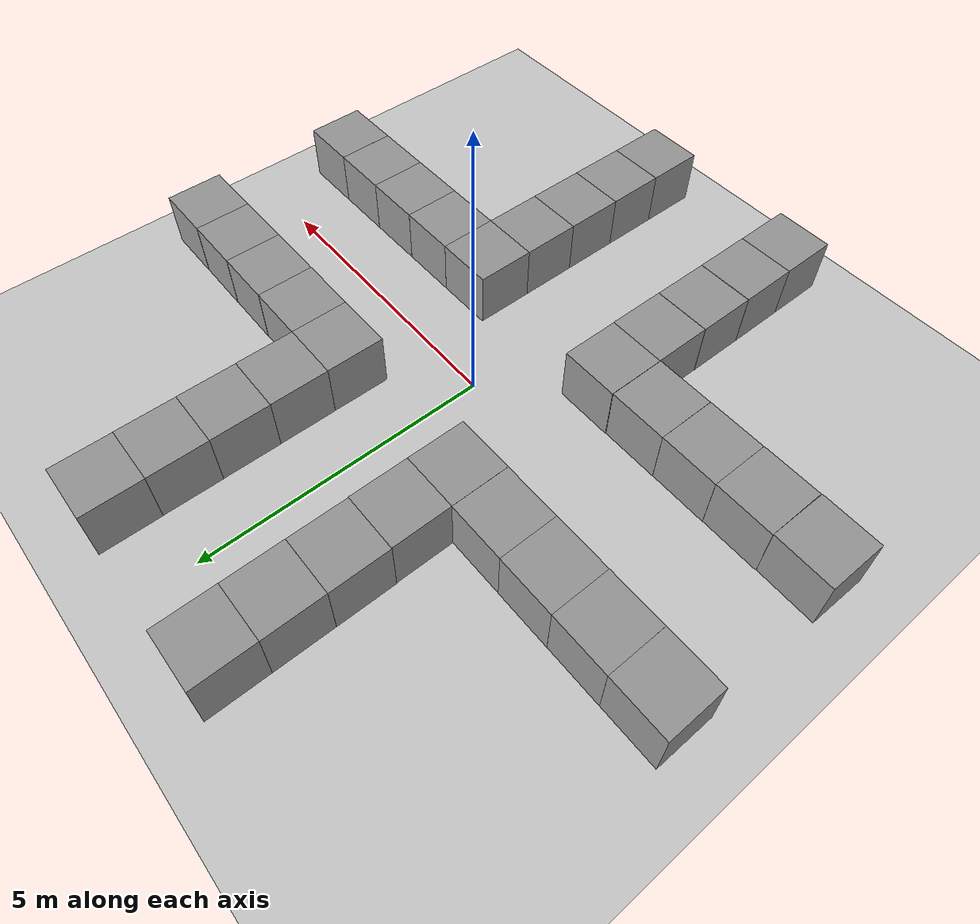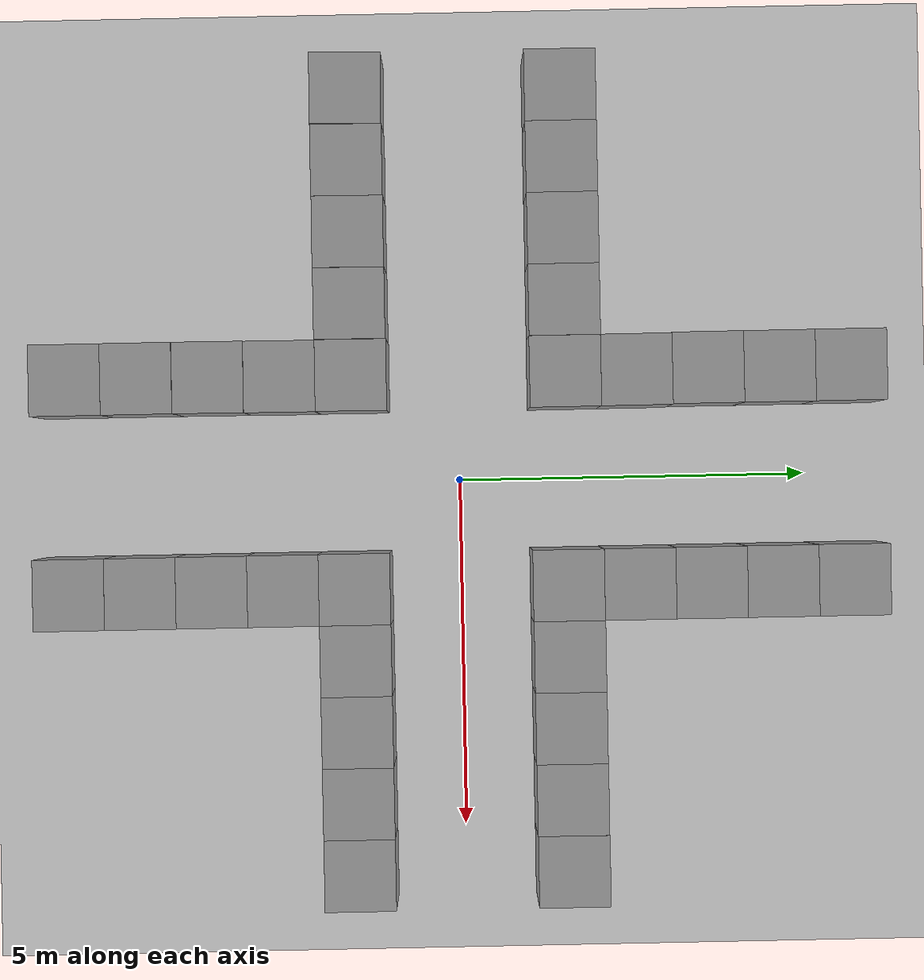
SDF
<sdf version="1.6">
 <world name="default">
  <light name="sun" type="directional">
   <pose>0 0 10 0 -0 0</pose>
   <diffuse>0.8 0.8 0.8 1</diffuse>
   <specular>0.1 0.1 0.1 1</specular>
   <attenuation>
    <range>1000</range>
    <constant>0.9</constant>
    <linear>0.01</linear>
    <quadratic>0.001</quadratic>
   </attenuation>
   <direction>-0.5 0.5 -1</direction>
  </light>
  <model name="ground_plane">
   <pose>1.5 -5.5 0 0 -0 0</pose>
   <static>1</static>
   <link name="link">
    <collision name="collision">
     <geometry><plane><normal>0 0 1</normal><size>100 100</size></plane></geometry>
     <surface><friction><ode><mu>100</mu><mu2>50</mu2></ode></friction></surface>
    </collision>
    <visual name="visual">
     <cast_shadows>0</cast_shadows>
     <geometry><plane><normal>0 0 1</normal><size>100 100</size></plane></geometry>
     <material>
      <script><uri>file://media/materials/scripts/gazebo.material</uri><name>Gazebo/Grey</name></script>
     </material>
    </visual>
   </link>
  </model>
  <gravity>0 0 -9.8</gravity>
  <magnetic_field>6e-06 2.3e-05 -4.2e-05</magnetic_field>
  <atmosphere type="adiabatic"/>
  <physics name="default_physics" default="0" type="ode">
   <max_step_size>0.001</max_step_size>
   <real_time_factor>1</real_time_factor>
   <real_time_update_rate>1000</real_time_update_rate>
  </physics>
  <scene><ambient>0.4 0.4 0.4 1</ambient><background>0.7 0.7 0.7 1</background><shadows>1</shadows></scene>
  <spherical_coordinates>
   <surface_model>EARTH_WGS84</surface_model>
   <latitude_deg>0</latitude_deg>
   <longitude_deg>0</longitude_deg>
   <elevation>0</elevation>
   <heading_deg>0</heading_deg>
  </spherical_coordinates>
  <model name="unit_box_0_0">
   <pose>1.49996 -3.50002 0.499995 0 1e-05 -0.000429</pose>
   <link name="link">
    <inertial>
     <mass>1</mass>
     <inertia>
      <ixx>0.166667</ixx>
      <ixy>0</ixy>
      <ixz>0</ixz>
      <iyy>0.166667</iyy>
      <iyz>0</iyz>
      <izz>0.166667</izz>
     </inertia>
    </inertial>
    <collision name="collision"><geometry><box><size>1 1 1</size></box></geometry></collision>
    <visual name="visual">
     <geometry><box><size>1 1 1</size></box></geometry>
     <material>
      <script><name>Gazebo/Grey</name><uri>file://media/materials/scripts/gazebo.material</uri></script>
     </material>
    </visual>
   </link>
  </model>
  <model name="unit_box_0_1">
   <pose>1.49982 -2.50001 0.499995 0 -1e-05 -0.000421</pose>
   <link name="link">
    <inertial>
     <mass>1</mass>
     <inertia>
      <ixx>0.166667</ixx>
      <ixy>0</ixy>
      <ixz>0</ixz>
      <iyy>0.166667</iyy>
      <iyz>0</iyz>
      <izz>0.166667</izz>
     </inertia>
    </inertial>
    <collision name="collision"><geometry><box><size>1 1 1</size></box></geometry></collision>
    <visual name="visual">
     <geometry><box><size>1 1 1</size></box></geometry>
     <material>
      <script><name>Gazebo/Grey</name><uri>file://media/materials/scripts/gazebo.material</uri></script>
     </material>
    </visual>
   </link>
  </model>
  <model name="unit_box_0_2">
   <pose>1.49988 -1.49998 0.499995 -0 -1e-05 -0.000378</pose>
   <link name="link">
    <inertial>
     <mass>1</mass>
     <inertia>
      <ixx>0.166667</ixx>
      <ixy>0</ixy>
      <ixz>0</ixz>
      <iyy>0.166667</iyy>
      <iyz>0</iyz>
      <izz>0.166667</izz>
     </inertia>
    </inertial>
    <collision name="collision"><geometry><box><size>1 1 1</size></box></geometry></collision>
    <visual name="visual">
     <geometry><box><size>1 1 1</size></box></geometry>
     <material>
      <script><name>Gazebo/Grey</name><uri>file://media/materials/scripts/gazebo.material</uri></script>
     </material>
    </visual>
   </link>
  </model>
  <model name="unit_box_0_0_clone">
   <pose>1.49999 -4.50006 0.499995 0 1e-05 -0.000353</pose>
   <link name="link">
    <inertial>
     <mass>1</mass>
     <inertia>
      <ixx>0.166667</ixx>
      <ixy>0</ixy>
      <ixz>0</ixz>
      <iyy>0.166667</iyy>
      <iyz>0</iyz>
      <izz>0.166667</izz>
     </inertia>
    </inertial>
    <collision name="collision"><geometry><box><size>1 1 1</size></box></geometry></collision>
    <visual name="visual">
     <geometry><box><size>1 1 1</size></box></geometry>
     <material>
      <script><name>Gazebo/Grey</name><uri>file://media/materials/scripts/gazebo.material</uri></script>
     </material>
    </visual>
   </link>
  </model>
  <model name="unit_box_0_3">
   <pose>1.50003 -5.50045 0.499995 0 1e-05 -0.00024</pose>
   <link name="link">
    <inertial>
     <mass>1</mass>
     <inertia>
      <ixx>0.166667</ixx>
      <ixy>0</ixy>
      <ixz>0</ixz>
      <iyy>0.166667</iyy>
      <iyz>0</iyz>
      <izz>0.166667</izz>
     </inertia>
    </inertial>
    <collision name="collision"><geometry><box><size>1 1 1</size></box></geometry></collision>
    <visual name="visual">
     <geometry><box><size>1 1 1</size></box></geometry>
     <material>
      <script><name>Gazebo/Grey</name><uri>file://media/materials/scripts/gazebo.material</uri></script>
     </material>
    </visual>
   </link>
  </model>
  <model name="unit_box_0_4">
   <pose>2.49996 -1.49998 0.499995 0 1e-05 -0.000233</pose>
   <link name="link">
    <inertial>
     <mass>1</mass>
     <inertia>
      <ixx>0.166667</ixx>
      <ixy>0</ixy>
      <ixz>0</ixz>
      <iyy>0.166667</iyy>
      <iyz>0</iyz>
      <izz>0.166667</izz>
     </inertia>
    </inertial>
    <collision name="collision"><geometry><box><size>1 1 1</size></box></geometry></collision>
    <visual name="visual">
     <geometry><box><size>1 1 1</size></box></geometry>
     <material>
      <script><name>Gazebo/Grey</name><uri>file://media/materials/scripts/gazebo.material</uri></script>
     </material>
    </visual>
   </link>
  </model>
  <model name="unit_box_0_5">
   <pose>3.5 -1.49998 0.499995 -1e-05 -0 -0.000178</pose>
   <link name="link">
    <inertial>
     <mass>1</mass>
     <inertia>
      <ixx>0.166667</ixx>
      <ixy>0</ixy>
      <ixz>0</ixz>
      <iyy>0.166667</iyy>
      <iyz>0</iyz>
      <izz>0.166667</izz>
     </inertia>
    </inertial>
    <collision name="collision"><geometry><box><size>1 1 1</size></box></geometry></collision>
    <visual name="visual">
     <geometry><box><size>1 1 1</size></box></geometry>
     <material>
      <script><name>Gazebo/Grey</name><uri>file://media/materials/scripts/gazebo.material</uri></script>
     </material>
    </visual>
   </link>
  </model>
  <model name="unit_box_0_6">
   <pose>4.50002 -1.49994 0.499995 1e-05 0 -0.00016</pose>
   <link name="link">
    <inertial>
     <mass>1</mass>
     <inertia>
      <ixx>0.166667</ixx>
      <ixy>0</ixy>
      <ixz>0</ixz>
      <iyy>0.166667</iyy>
      <iyz>0</iyz>
      <izz>0.166667</izz>
     </inertia>
    </inertial>
    <collision name="collision"><geometry><box><size>1 1 1</size></box></geometry></collision>
    <visual name="visual">
     <geometry><box><size>1 1 1</size></box></geometry>
     <material>
      <script><name>Gazebo/Grey</name><uri>file://media/materials/scripts/gazebo.material</uri></script>
     </material>
    </visual>
   </link>
  </model>
  <model name="unit_box_0_7">
   <pose>5.50006 -1.49999 0.499995 -1e-05 -0 -9.1e-05</pose>
   <link name="link">
    <inertial>
     <mass>1</mass>
     <inertia>
      <ixx>0.166667</ixx>
      <ixy>0</ixy>
      <ixz>0</ixz>
      <iyy>0.166667</iyy>
      <iyz>0</iyz>
      <izz>0.166667</izz>
     </inertia>
    </inertial>
    <collision name="collision"><geometry><box><size>1 1 1</size></box></geometry></collision>
    <visual name="visual">
     <geometry><box><size>1 1 1</size></box></geometry>
     <material>
      <script><name>Gazebo/Grey</name><uri>file://media/materials/scripts/gazebo.material</uri></script>
     </material>
    </visual>
   </link>
  </model>
  <model name="unit_box_0_8">
   <pose>5.50034 1.50004 0.499995 0 1e-05 -0.003414</pose>
   <link name="link">
    <inertial>
     <mass>1</mass>
     <inertia>
      <ixx>0.166667</ixx>
      <ixy>0</ixy>
      <ixz>0</ixz>
      <iyy>0.166667</iyy>
      <iyz>0</iyz>
      <izz>0.166667</izz>
     </inertia>
    </inertial>
    <collision name="collision"><geometry><box><size>1 1 1</size></box></geometry></collision>
    <visual name="visual">
     <geometry><box><size>1 1 1</size></box></geometry>
     <material>
      <script><name>Gazebo/Grey</name><uri>file://media/materials/scripts/gazebo.material</uri></script>
     </material>
    </visual>
   </link>
  </model>
  <model name="unit_box_0_9">
   <pose>4.50019 1.49982 0.499995 0 1e-05 -0.003123</pose>
   <link name="link">
    <inertial>
     <mass>1</mass>
     <inertia>
      <ixx>0.166667</ixx>
      <ixy>0</ixy>
      <ixz>0</ixz>
      <iyy>0.166667</iyy>
      <iyz>0</iyz>
      <izz>0.166667</izz>
     </inertia>
    </inertial>
    <collision name="collision"><geometry><box><size>1 1 1</size></box></geometry></collision>
    <visual name="visual">
     <geometry><box><size>1 1 1</size></box></geometry>
     <material>
      <script><name>Gazebo/Grey</name><uri>file://media/materials/scripts/gazebo.material</uri></script>
     </material>
    </visual>
   </link>
  </model>
  <model name="unit_box_0_10">
   <pose>3.50013 1.49978 0.499995 0 1e-05 -0.003064</pose>
   <link name="link">
    <inertial>
     <mass>1</mass>
     <inertia>
      <ixx>0.166667</ixx>
      <ixy>0</ixy>
      <ixz>0</ixz>
      <iyy>0.166667</iyy>
      <iyz>0</iyz>
      <izz>0.166667</izz>
     </inertia>
    </inertial>
    <collision name="collision"><geometry><box><size>1 1 1</size></box></geometry></collision>
    <visual name="visual">
     <geometry><box><size>1 1 1</size></box></geometry>
     <material>
      <script><name>Gazebo/Grey</name><uri>file://media/materials/scripts/gazebo.material</uri></script>
     </material>
    </visual>
   </link>
  </model>
  <model name="unit_box_0_11">
   <pose>2.50011 1.50034 0.499995 0 1e-05 -0.003073</pose>
   <link name="link">
    <inertial>
     <mass>1</mass>
     <inertia>
      <ixx>0.166667</ixx>
      <ixy>0</ixy>
      <ixz>0</ixz>
      <iyy>0.166667</iyy>
      <iyz>0</iyz>
      <izz>0.166667</izz>
     </inertia>
    </inertial>
    <collision name="collision"><geometry><box><size>1 1 1</size></box></geometry></collision>
    <visual name="visual">
     <geometry><box><size>1 1 1</size></box></geometry>
     <material>
      <script><name>Gazebo/Grey</name><uri>file://media/materials/scripts/gazebo.material</uri></script>
     </material>
    </visual>
   </link>
  </model>
  <model name="unit_box_0_12">
   <pose>1.49998 1.49995 0.499995 0 1e-05 -0.003325</pose>
   <link name="link">
    <inertial>
     <mass>1</mass>
     <inertia>
      <ixx>0.166667</ixx>
      <ixy>0</ixy>
      <ixz>0</ixz>
      <iyy>0.166667</iyy>
      <iyz>0</iyz>
      <izz>0.166667</izz>
     </inertia>
    </inertial>
    <collision name="collision"><geometry><box><size>1 1 1</size></box></geometry></collision>
    <visual name="visual">
     <geometry><box><size>1 1 1</size></box></geometry>
     <material>
      <script><name>Gazebo/Grey</name><uri>file://media/materials/scripts/gazebo.material</uri></script>
     </material>
    </visual>
   </link>
  </model>
  <model name="unit_box_0_13">
   <pose>1.50001 2.50004 0.499995 0 -1e-05 -0.003496</pose>
   <link name="link">
    <inertial>
     <mass>1</mass>
     <inertia>
      <ixx>0.166667</ixx>
      <ixy>0</ixy>
      <ixz>0</ixz>
      <iyy>0.166667</iyy>
      <iyz>0</iyz>
      <izz>0.166667</izz>
     </inertia>
    </inertial>
    <collision name="collision"><geometry><box><size>1 1 1</size></box></geometry></collision>
    <visual name="visual">
     <geometry><box><size>1 1 1</size></box></geometry>
     <material>
      <script><name>Gazebo/Grey</name><uri>file://media/materials/scripts/gazebo.material</uri></script>
     </material>
    </visual>
   </link>
  </model>
  <model name="unit_box_0_14">
   <pose>1.49999 3.50007 0.499995 0 -1e-05 -0.003517</pose>
   <link name="link">
    <inertial>
     <mass>1</mass>
     <inertia>
      <ixx>0.166667</ixx>
      <ixy>0</ixy>
      <ixz>0</ixz>
      <iyy>0.166667</iyy>
      <iyz>0</iyz>
      <izz>0.166667</izz>
     </inertia>
    </inertial>
    <collision name="collision"><geometry><box><size>1 1 1</size></box></geometry></collision>
    <visual name="visual">
     <geometry><box><size>1 1 1</size></box></geometry>
     <material>
      <script><name>Gazebo/Grey</name><uri>file://media/materials/scripts/gazebo.material</uri></script>
     </material>
    </visual>
   </link>
  </model>
  <model name="unit_box_0_15">
   <pose>1.49999 4.50009 0.499995 0 1e-05 -0.003515</pose>
   <link name="link">
    <inertial>
     <mass>1</mass>
     <inertia>
      <ixx>0.166667</ixx>
      <ixy>0</ixy>
      <ixz>0</ixz>
      <iyy>0.166667</iyy>
      <iyz>0</iyz>
      <izz>0.166667</izz>
     </inertia>
    </inertial>
    <collision name="collision"><geometry><box><size>1 1 1</size></box></geometry></collision>
    <visual name="visual">
     <geometry><box><size>1 1 1</size></box></geometry>
     <material>
      <script><name>Gazebo/Grey</name><uri>file://media/materials/scripts/gazebo.material</uri></script>
     </material>
    </visual>
   </link>
  </model>
  <model name="unit_box_0_16">
   <pose>1.49997 5.50009 0.499995 0 -1e-05 -0.003516</pose>
   <link name="link">
    <inertial>
     <mass>1</mass>
     <inertia>
      <ixx>0.166667</ixx>
      <ixy>0</ixy>
      <ixz>0</ixz>
      <iyy>0.166667</iyy>
      <iyz>0</iyz>
      <izz>0.166667</izz>
     </inertia>
    </inertial>
    <collision name="collision"><geometry><box><size>1 1 1</size></box></geometry></collision>
    <visual name="visual">
     <geometry><box><size>1 1 1</size></box></geometry>
     <material>
      <script><name>Gazebo/Grey</name><uri>file://media/materials/scripts/gazebo.material</uri></script>
     </material>
    </visual>
   </link>
  </model>
  <model name="unit_box_0_17">
   <pose>-1.50814 5.50752 0.5 0 -0 0.000727</pose>
   <link name="link">
    <inertial>
     <mass>1</mass>
     <inertia>
      <ixx>0.166667</ixx>
      <ixy>0</ixy>
      <ixz>0</ixz>
      <iyy>0.166667</iyy>
      <iyz>0</iyz>
      <izz>0.166667</izz>
     </inertia>
    </inertial>
    <collision name="collision"><geometry><box><size>1 1 1</size></box></geometry></collision>
    <visual name="visual">
     <geometry><box><size>1 1 1</size></box></geometry>
     <material>
      <script><name>Gazebo/Grey</name><uri>file://media/materials/scripts/gazebo.material</uri></script>
     </material>
    </visual>
   </link>
  </model>
  <model name="unit_box_0_18">
   <pose>-1.50795 4.5075 0.5 0 -0 0.000763</pose>
   <link name="link">
    <inertial>
     <mass>1</mass>
     <inertia>
      <ixx>0.166667</ixx>
      <ixy>0</ixy>
      <ixz>0</ixz>
      <iyy>0.166667</iyy>
      <iyz>0</iyz>
      <izz>0.166667</izz>
     </inertia>
    </inertial>
    <collision name="collision"><geometry><box><size>1 1 1</size></box></geometry></collision>
    <visual name="visual">
     <geometry><box><size>1 1 1</size></box></geometry>
     <material>
      <script><name>Gazebo/Grey</name><uri>file://media/materials/scripts/gazebo.material</uri></script>
     </material>
    </visual>
   </link>
  </model>
  <model name="unit_box_0_19">
   <pose>-1.50822 3.50747 0.5 0 -0 0.000785</pose>
   <link name="link">
    <inertial>
     <mass>1</mass>
     <inertia>
      <ixx>0.166667</ixx>
      <ixy>0</ixy>
      <ixz>0</ixz>
      <iyy>0.166667</iyy>
      <iyz>0</iyz>
      <izz>0.166667</izz>
     </inertia>
    </inertial>
    <collision name="collision"><geometry><box><size>1 1 1</size></box></geometry></collision>
    <visual name="visual">
     <geometry><box><size>1 1 1</size></box></geometry>
     <material>
      <script><name>Gazebo/Grey</name><uri>file://media/materials/scripts/gazebo.material</uri></script>
     </material>
    </visual>
   </link>
  </model>
  <model name="unit_box_0_20">
   <pose>-1.49922 2.50744 0.499995 0 -1e-05 0.000857</pose>
   <link name="link">
    <inertial>
     <mass>1</mass>
     <inertia>
      <ixx>0.166667</ixx>
      <ixy>0</ixy>
      <ixz>0</ixz>
      <iyy>0.166667</iyy>
      <iyz>0</iyz>
      <izz>0.166667</izz>
     </inertia>
    </inertial>
    <collision name="collision"><geometry><box><size>1 1 1</size></box></geometry></collision>
    <visual name="visual">
     <geometry><box><size>1 1 1</size></box></geometry>
     <material>
      <script><name>Gazebo/Grey</name><uri>file://media/materials/scripts/gazebo.material</uri></script>
     </material>
    </visual>
   </link>
  </model>
  <model name="unit_box_0_21">
   <pose>-1.49764 1.50726 0.499995 -1e-05 0 0.000545</pose>
   <link name="link">
    <inertial>
     <mass>1</mass>
     <inertia>
      <ixx>0.166667</ixx>
      <ixy>0</ixy>
      <ixz>0</ixz>
      <iyy>0.166667</iyy>
      <iyz>0</iyz>
      <izz>0.166667</izz>
     </inertia>
    </inertial>
    <collision name="collision"><geometry><box><size>1 1 1</size></box></geometry></collision>
    <visual name="visual">
     <geometry><box><size>1 1 1</size></box></geometry>
     <material>
      <script><name>Gazebo/Grey</name><uri>file://media/materials/scripts/gazebo.material</uri></script>
     </material>
    </visual>
   </link>
  </model>
  <model name="unit_box_0_22">
   <pose>-2.4988 1.51159 0.499995 0 1e-05 -1.6e-05</pose>
   <link name="link">
    <inertial>
     <mass>1</mass>
     <inertia>
      <ixx>0.166667</ixx>
      <ixy>0</ixy>
      <ixz>0</ixz>
      <iyy>0.166667</iyy>
      <iyz>0</iyz>
      <izz>0.166667</izz>
     </inertia>
    </inertial>
    <collision name="collision"><geometry><box><size>1 1 1</size></box></geometry></collision>
    <visual name="visual">
     <geometry><box><size>1 1 1</size></box></geometry>
     <material>
      <script><name>Gazebo/Grey</name><uri>file://media/materials/scripts/gazebo.material</uri></script>
     </material>
    </visual>
   </link>
  </model>
  <model name="unit_box_0_23">
   <pose>-3.49886 1.51334 0.5 0 0 -0.00012</pose>
   <link name="link">
    <inertial>
     <mass>1</mass>
     <inertia>
      <ixx>0.166667</ixx>
      <ixy>0</ixy>
      <ixz>0</ixz>
      <iyy>0.166667</iyy>
      <iyz>0</iyz>
      <izz>0.166667</izz>
     </inertia>
    </inertial>
    <collision name="collision"><geometry><box><size>1 1 1</size></box></geometry></collision>
    <visual name="visual">
     <geometry><box><size>1 1 1</size></box></geometry>
     <material>
      <script><name>Gazebo/Grey</name><uri>file://media/materials/scripts/gazebo.material</uri></script>
     </material>
    </visual>
   </link>
  </model>
  <model name="unit_box_0_24">
   <pose>-4.49893 1.51249 0.5 0 0 -0.000243</pose>
   <link name="link">
    <inertial>
     <mass>1</mass>
     <inertia>
      <ixx>0.166667</ixx>
      <ixy>0</ixy>
      <ixz>0</ixz>
      <iyy>0.166667</iyy>
      <iyz>0</iyz>
      <izz>0.166667</izz>
     </inertia>
    </inertial>
    <collision name="collision"><geometry><box><size>1 1 1</size></box></geometry></collision>
    <visual name="visual">
     <geometry><box><size>1 1 1</size></box></geometry>
     <material>
      <script><name>Gazebo/Grey</name><uri>file://media/materials/scripts/gazebo.material</uri></script>
     </material>
    </visual>
   </link>
  </model>
  <model name="unit_box_0_25">
   <pose>-5.49901 1.51243 0.499995 -1e-05 -0 -0.000405</pose>
   <link name="link">
    <inertial>
     <mass>1</mass>
     <inertia>
      <ixx>0.166667</ixx>
      <ixy>0</ixy>
      <ixz>0</ixz>
      <iyy>0.166667</iyy>
      <iyz>0</iyz>
      <izz>0.166667</izz>
     </inertia>
    </inertial>
    <collision name="collision"><geometry><box><size>1 1 1</size></box></geometry></collision>
    <visual name="visual">
     <geometry><box><size>1 1 1</size></box></geometry>
     <material>
      <script><name>Gazebo/Grey</name><uri>file://media/materials/scripts/gazebo.material</uri></script>
     </material>
    </visual>
   </link>
  </model>
  <model name="unit_box_0_26">
   <pose>-5.51085 -1.49796 0.499995 0 -1e-05 -0.015417</pose>
   <link name="link">
    <inertial>
     <mass>1</mass>
     <inertia>
      <ixx>0.166667</ixx>
      <ixy>0</ixy>
      <ixz>0</ixz>
      <iyy>0.166667</iyy>
      <iyz>0</iyz>
      <izz>0.166667</izz>
     </inertia>
    </inertial>
    <collision name="collision"><geometry><box><size>1 1 1</size></box></geometry></collision>
    <visual name="visual">
     <geometry><box><size>1 1 1</size></box></geometry>
     <material>
      <script><name>Gazebo/Grey</name><uri>file://media/materials/scripts/gazebo.material</uri></script>
     </material>
    </visual>
   </link>
  </model>
  <model name="unit_box_0_27">
   <pose>-4.50608 -1.49911 0.499995 -0 1e-05 -0.00588</pose>
   <link name="link">
    <inertial>
     <mass>1</mass>
     <inertia>
      <ixx>0.166667</ixx>
      <ixy>0</ixy>
      <ixz>0</ixz>
      <iyy>0.166667</iyy>
      <iyz>0</iyz>
      <izz>0.166667</izz>
     </inertia>
    </inertial>
    <collision name="collision"><geometry><box><size>1 1 1</size></box></geometry></collision>
    <visual name="visual">
     <geometry><box><size>1 1 1</size></box></geometry>
     <material>
      <script><name>Gazebo/Grey</name><uri>file://media/materials/scripts/gazebo.material</uri></script>
     </material>
    </visual>
   </link>
  </model>
  <model name="unit_box_0_28">
   <pose>-3.50592 -1.49981 0.499995 1e-05 0 -0.005592</pose>
   <link name="link">
    <inertial>
     <mass>1</mass>
     <inertia>
      <ixx>0.166667</ixx>
      <ixy>0</ixy>
      <ixz>0</ixz>
      <iyy>0.166667</iyy>
      <iyz>0</iyz>
      <izz>0.166667</izz>
     </inertia>
    </inertial>
    <collision name="collision"><geometry><box><size>1 1 1</size></box></geometry></collision>
    <visual name="visual">
     <geometry><box><size>1 1 1</size></box></geometry>
     <material>
      <script><name>Gazebo/Grey</name><uri>file://media/materials/scripts/gazebo.material</uri></script>
     </material>
    </visual>
   </link>
  </model>
  <model name="unit_box_0_29">
   <pose>-2.50425 -1.50019 0.499995 1e-05 -0 -0.002276</pose>
   <link name="link">
    <inertial>
     <mass>1</mass>
     <inertia>
      <ixx>0.166667</ixx>
      <ixy>0</ixy>
      <ixz>0</ixz>
      <iyy>0.166667</iyy>
      <iyz>0</iyz>
      <izz>0.166667</izz>
     </inertia>
    </inertial>
    <collision name="collision"><geometry><box><size>1 1 1</size></box></geometry></collision>
    <visual name="visual">
     <geometry><box><size>1 1 1</size></box></geometry>
     <material>
      <script><name>Gazebo/Grey</name><uri>file://media/materials/scripts/gazebo.material</uri></script>
     </material>
    </visual>
   </link>
  </model>
  <model name="unit_box_0_30">
   <pose>-1.50619 -3.49777 0.499995 0 -1e-05 -0.003998</pose>
   <link name="link">
    <inertial>
     <mass>1</mass>
     <inertia>
      <ixx>0.166667</ixx>
      <ixy>0</ixy>
      <ixz>0</ixz>
      <iyy>0.166667</iyy>
      <iyz>0</iyz>
      <izz>0.166667</izz>
     </inertia>
    </inertial>
    <collision name="collision"><geometry><box><size>1 1 1</size></box></geometry></collision>
    <visual name="visual">
     <geometry><box><size>1 1 1</size></box></geometry>
     <material>
      <script><name>Gazebo/Grey</name><uri>file://media/materials/scripts/gazebo.material</uri></script>
     </material>
    </visual>
   </link>
  </model>
  <model name="unit_box_0_31">
   <pose>-1.49942 -1.49641 0.499995 1e-05 -0 -0.00412</pose>
   <link name="link">
    <inertial>
     <mass>1</mass>
     <inertia>
      <ixx>0.166667</ixx>
      <ixy>0</ixy>
      <ixz>0</ixz>
      <iyy>0.166667</iyy>
      <iyz>0</iyz>
      <izz>0.166667</izz>
     </inertia>
    </inertial>
    <collision name="collision"><geometry><box><size>1 1 1</size></box></geometry></collision>
    <visual name="visual">
     <geometry><box><size>1 1 1</size></box></geometry>
     <material>
      <script><name>Gazebo/Grey</name><uri>file://media/materials/scripts/gazebo.material</uri></script>
     </material>
    </visual>
   </link>
  </model>
  <model name="unit_box_0_32">
   <pose>-1.49942 -2.49649 0.499995 1e-05 -0 -0.003988</pose>
   <link name="link">
    <inertial>
     <mass>1</mass>
     <inertia>
      <ixx>0.166667</ixx>
      <ixy>0</ixy>
      <ixz>0</ixz>
      <iyy>0.166667</iyy>
      <iyz>0</iyz>
      <izz>0.166667</izz>
     </inertia>
    </inertial>
    <collision name="collision"><geometry><box><size>1 1 1</size></box></geometry></collision>
    <visual name="visual">
     <geometry><box><size>1 1 1</size></box></geometry>
     <material>
      <script><name>Gazebo/Grey</name><uri>file://media/materials/scripts/gazebo.material</uri></script>
     </material>
    </visual>
   </link>
  </model>
  <model name="unit_box_0_33">
   <pose>-1.50842 -4.50073 0.499995 -1e-05 0 0</pose>
   <link name="link">
    <inertial>
     <mass>1</mass>
     <inertia>
      <ixx>0.166667</ixx>
      <ixy>0</ixy>
      <ixz>0</ixz>
      <iyy>0.166667</iyy>
      <iyz>0</iyz>
      <izz>0.166667</izz>
     </inertia>
    </inertial>
    <collision name="collision"><geometry><box><size>1 1 1</size></box></geometry></collision>
    <visual name="visual">
     <geometry><box><size>1 1 1</size></box></geometry>
     <material>
      <script><name>Gazebo/Grey</name><uri>file://media/materials/scripts/gazebo.material</uri></script>
     </material>
    </visual>
   </link>
  </model>
  <model name="unit_box_0_34">
   <pose>-1.5081 -5.50075 0.499995 1e-05 -0 0</pose>
   <link name="link">
    <inertial>
     <mass>1</mass>
     <inertia>
      <ixx>0.166667</ixx>
      <ixy>0</ixy>
      <ixz>0</ixz>
      <iyy>0.166667</iyy>
      <iyz>0</iyz>
      <izz>0.166667</izz>
     </inertia>
    </inertial>
    <collision name="collision"><geometry><box><size>1 1 1</size></box></geometry></collision>
    <visual name="visual">
     <geometry><box><size>1 1 1</size></box></geometry>
     <material>
      <script><name>Gazebo/Grey</name><uri>file://media/materials/scripts/gazebo.material</uri></script>
     </material>
    </visual>
   </link>
  </model>
 </world>
</sdf>
